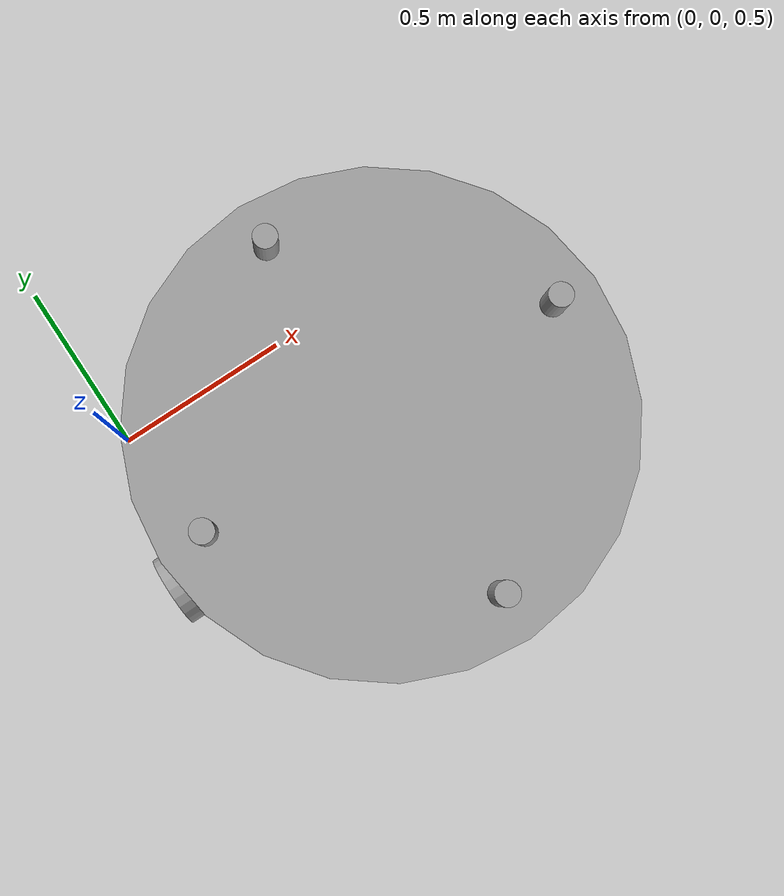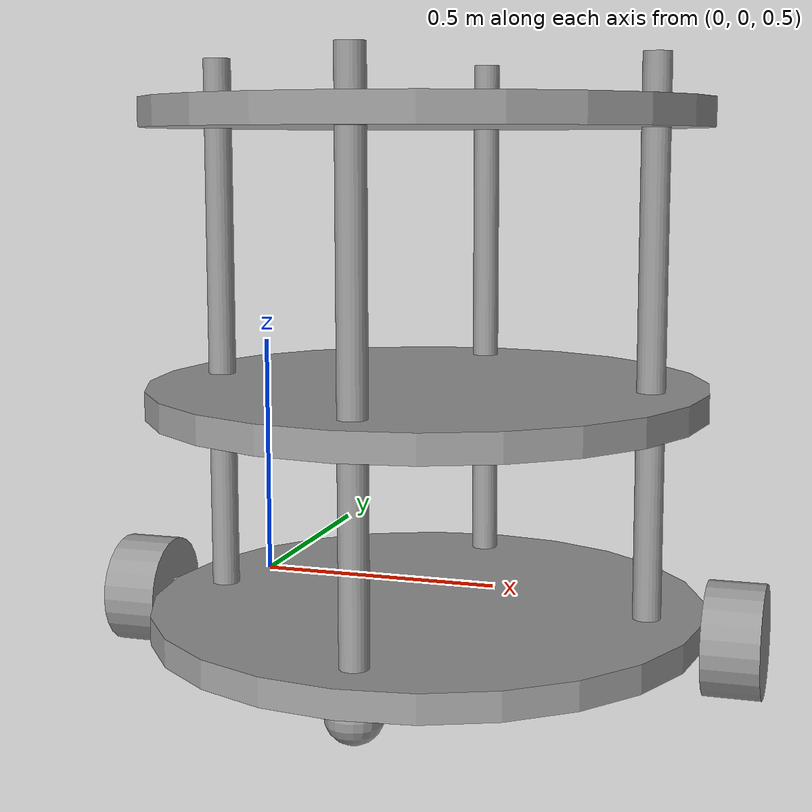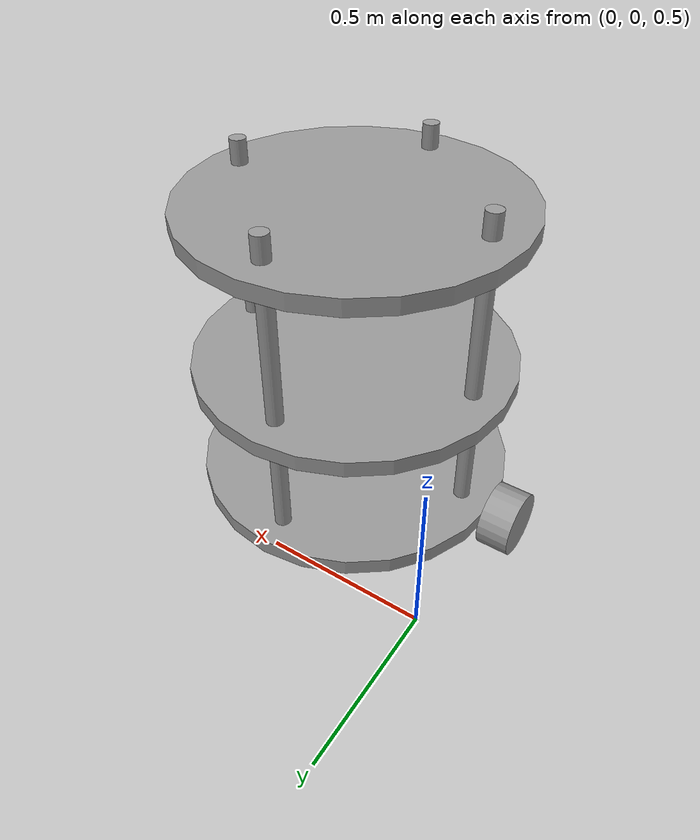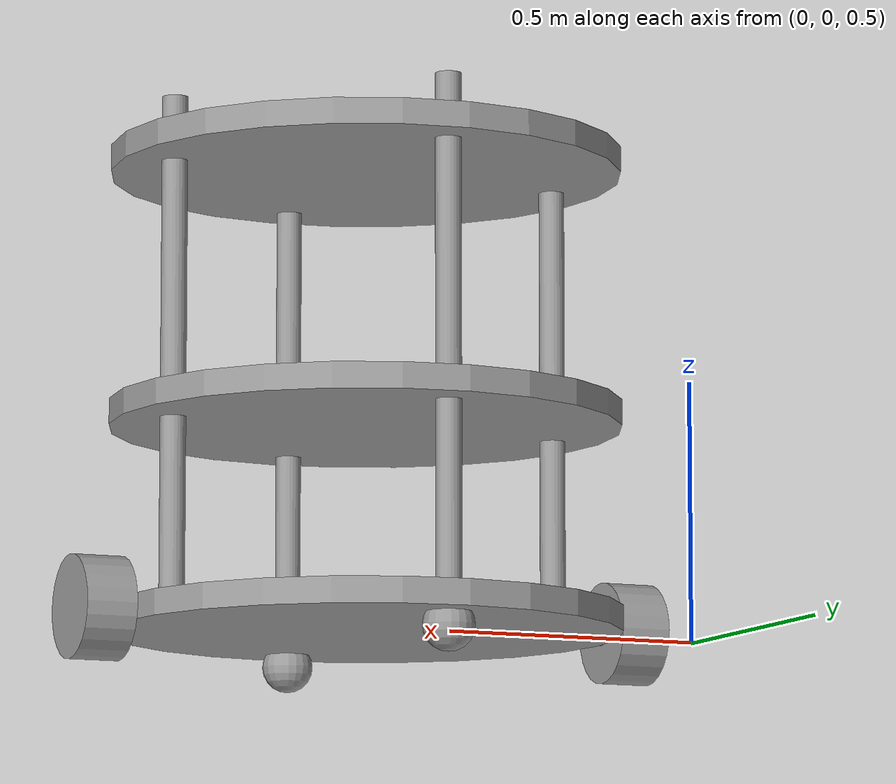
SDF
<?xml version='1.0'?>
<sdf version='1.6'>
  <model name='chefbot'>
    <link name='link_0'>
      <pose frame=''>0.489711 -0.428162 0.466588 0 -0 0</pose>
      <inertial>
        <mass>1</mass>
        <inertia>
          <ixx>0.145833</ixx>
          <ixy>0</ixy>
          <ixz>0</ixz>
          <iyy>0.145833</iyy>
          <iyz>0</iyz>
          <izz>0.125</izz>
        </inertia>
        <pose frame=''>0 0 0 0 -0 0</pose>
      </inertial>
      <gravity>1</gravity>
      <self_collide>0</self_collide>
      <kinematic>0</kinematic>
      <visual name='visual'>
        <pose frame=''>0 0 0.1 0 -0 0</pose>
        <geometry>
          <cylinder>
            <radius>0.5</radius>
            <length>0.05</length>
          </cylinder>
        </geometry>
        <material>
          <lighting>1</lighting>
          <script>
            <uri>file://media/materials/scripts/gazebo.material</uri>
            <name>Gazebo/Grey</name>
          </script>
          <ambient>0.3 0.3 0.3 1</ambient>
          <diffuse>0.7 0.7 0.7 1</diffuse>
          <specular>0.01 0.01 0.01 1</specular>
          <emissive>0 0 0 1</emissive>
          <shader type='vertex'>
            <normal_map>__default__</normal_map>
          </shader>
        </material>
        <cast_shadows>1</cast_shadows>
        <transparency>0</transparency>
      </visual>
      <collision name='collision'>
        <laser_retro>0</laser_retro>
        <max_contacts>10</max_contacts>
        <pose frame=''>0 0 0.1 0 -0 0</pose>
        <geometry>
          <cylinder>
            <radius>0.5</radius>
            <length>0.05</length>
          </cylinder>
        </geometry>
        <surface>
          <friction>
            <ode>
              <mu>1</mu>
              <mu2>1</mu2>
              <fdir1>0 0 0</fdir1>
              <slip1>0</slip1>
              <slip2>0</slip2>
            </ode>
            <torsional>
              <coefficient>1</coefficient>
              <patch_radius>0</patch_radius>
              <surface_radius>0</surface_radius>
              <use_patch_radius>1</use_patch_radius>
              <ode>
                <slip>0</slip>
              </ode>
            </torsional>
          </friction>
          <bounce>
            <restitution_coefficient>0</restitution_coefficient>
            <threshold>1e+06</threshold>
          </bounce>
          <contact>
            <collide_without_contact>0</collide_without_contact>
            <collide_without_contact_bitmask>1</collide_without_contact_bitmask>
            <collide_bitmask>1</collide_bitmask>
            <ode>
              <soft_cfm>0</soft_cfm>
              <soft_erp>0.2</soft_erp>
              <kp>1e+13</kp>
              <kd>1</kd>
              <max_vel>0.01</max_vel>
              <min_depth>0</min_depth>
            </ode>
            <bullet>
              <split_impulse>1</split_impulse>
              <split_impulse_penetration_threshold>-0.01</split_impulse_penetration_threshold>
              <soft_cfm>0</soft_cfm>
              <soft_erp>0.2</soft_erp>
              <kp>1e+13</kp>
              <kd>1</kd>
            </bullet>
          </contact>
        </surface>
      </collision>
    </link>
    <link name='link_1'>
      <pose frame=''>0.489711 -0.428162 0.466588 0 -0 0</pose>
      <inertial>
        <mass>1</mass>
        <inertia>
          <ixx>0.145833</ixx>
          <ixy>0</ixy>
          <ixz>0</ixz>
          <iyy>0.145833</iyy>
          <iyz>0</iyz>
          <izz>0.125</izz>
        </inertia>
        <pose frame=''>0 0 0 0 -0 0</pose>
      </inertial>
      <gravity>1</gravity>
      <self_collide>0</self_collide>
      <kinematic>0</kinematic>
      <visual name='visual'>
        <pose frame=''>0 0 0.5 0 -0 0</pose>
        <geometry>
          <cylinder>
            <radius>0.5</radius>
            <length>0.05</length>
          </cylinder>
        </geometry>
        <material>
          <lighting>1</lighting>
          <script>
            <uri>file://media/materials/scripts/gazebo.material</uri>
            <name>Gazebo/Grey</name>
          </script>
          <ambient>0.3 0.3 0.3 1</ambient>
          <diffuse>0.7 0.7 0.7 1</diffuse>
          <specular>0.01 0.01 0.01 1</specular>
          <emissive>0 0 0 1</emissive>
          <shader type='vertex'>
            <normal_map>__default__</normal_map>
          </shader>
        </material>
        <cast_shadows>1</cast_shadows>
        <transparency>0</transparency>
      </visual>
      <collision name='collision'>
        <laser_retro>0</laser_retro>
        <max_contacts>10</max_contacts>
        <pose frame=''>0 0 0.5 0 -0 0</pose>
        <geometry>
          <cylinder>
            <radius>0.5</radius>
            <length>0.05</length>
          </cylinder>
        </geometry>
        <surface>
          <friction>
            <ode>
              <mu>1</mu>
              <mu2>1</mu2>
              <fdir1>0 0 0</fdir1>
              <slip1>0</slip1>
              <slip2>0</slip2>
            </ode>
            <torsional>
              <coefficient>1</coefficient>
              <patch_radius>0</patch_radius>
              <surface_radius>0</surface_radius>
              <use_patch_radius>1</use_patch_radius>
              <ode>
                <slip>0</slip>
              </ode>
            </torsional>
          </friction>
          <bounce>
            <restitution_coefficient>0</restitution_coefficient>
            <threshold>1e+06</threshold>
          </bounce>
          <contact>
            <collide_without_contact>0</collide_without_contact>
            <collide_without_contact_bitmask>1</collide_without_contact_bitmask>
            <collide_bitmask>1</collide_bitmask>
            <ode>
              <soft_cfm>0</soft_cfm>
              <soft_erp>0.2</soft_erp>
              <kp>1e+13</kp>
              <kd>1</kd>
              <max_vel>0.01</max_vel>
              <min_depth>0</min_depth>
            </ode>
            <bullet>
              <split_impulse>1</split_impulse>
              <split_impulse_penetration_threshold>-0.01</split_impulse_penetration_threshold>
              <soft_cfm>0</soft_cfm>
              <soft_erp>0.2</soft_erp>
              <kp>1e+13</kp>
              <kd>1</kd>
            </bullet>
          </contact>
        </surface>
      </collision>
    </link>
    <link name='link_2'>
      <pose frame=''>0.489711 -0.428162 0.466588 0 -0 0</pose>
      <inertial>
        <mass>1</mass>
        <inertia>
          <ixx>0.145833</ixx>
          <ixy>0</ixy>
          <ixz>0</ixz>
          <iyy>0.145833</iyy>
          <iyz>0</iyz>
          <izz>0.125</izz>
        </inertia>
        <pose frame=''>0 0 0 0 -0 0</pose>
      </inertial>
      <gravity>1</gravity>
      <self_collide>0</self_collide>
      <kinematic>0</kinematic>
      <visual name='visual'>
        <pose frame=''>0 0 1 0 -0 0</pose>
        <geometry>
          <cylinder>
            <radius>0.5</radius>
            <length>0.05</length>
          </cylinder>
        </geometry>
        <material>
          <lighting>1</lighting>
          <script>
            <uri>file://media/materials/scripts/gazebo.material</uri>
            <name>Gazebo/Grey</name>
          </script>
          <ambient>0.3 0.3 0.3 1</ambient>
          <diffuse>0.7 0.7 0.7 1</diffuse>
          <specular>0.01 0.01 0.01 1</specular>
          <emissive>0 0 0 1</emissive>
          <shader type='vertex'>
            <normal_map>__default__</normal_map>
          </shader>
        </material>
        <cast_shadows>1</cast_shadows>
        <transparency>0</transparency>
      </visual>
      <collision name='collision'>
        <laser_retro>0</laser_retro>
        <max_contacts>10</max_contacts>
        <pose frame=''>0 0 1 0 -0 0</pose>
        <geometry>
          <cylinder>
            <radius>0.5</radius>
            <length>0.05</length>
          </cylinder>
        </geometry>
        <surface>
          <friction>
            <ode>
              <mu>1</mu>
              <mu2>1</mu2>
              <fdir1>0 0 0</fdir1>
              <slip1>0</slip1>
              <slip2>0</slip2>
            </ode>
            <torsional>
              <coefficient>1</coefficient>
              <patch_radius>0</patch_radius>
              <surface_radius>0</surface_radius>
              <use_patch_radius>1</use_patch_radius>
              <ode>
                <slip>0</slip>
              </ode>
            </torsional>
          </friction>
          <bounce>
            <restitution_coefficient>0</restitution_coefficient>
            <threshold>1e+06</threshold>
          </bounce>
          <contact>
            <collide_without_contact>0</collide_without_contact>
            <collide_without_contact_bitmask>1</collide_without_contact_bitmask>
            <collide_bitmask>1</collide_bitmask>
            <ode>
              <soft_cfm>0</soft_cfm>
              <soft_erp>0.2</soft_erp>
              <kp>1e+13</kp>
              <kd>1</kd>
              <max_vel>0.01</max_vel>
              <min_depth>0</min_depth>
            </ode>
            <bullet>
              <split_impulse>1</split_impulse>
              <split_impulse_penetration_threshold>-0.01</split_impulse_penetration_threshold>
              <soft_cfm>0</soft_cfm>
              <soft_erp>0.2</soft_erp>
              <kp>1e+13</kp>
              <kd>1</kd>
            </bullet>
          </contact>
        </surface>
      </collision>
    </link>
    <link name='link_4'>
      <pose frame=''>0.889711 -0.428162 0.966588 0 -0 0</pose>
      <inertial>
        <mass>1</mass>
        <inertia>
          <ixx>0.145833</ixx>
          <ixy>0</ixy>
          <ixz>0</ixz>
          <iyy>0.145833</iyy>
          <iyz>0</iyz>
          <izz>0.125</izz>
        </inertia>
        <pose frame=''>0 0 0 0 -0 0</pose>
      </inertial>
      <gravity>1</gravity>
      <self_collide>0</self_collide>
      <kinematic>0</kinematic>
      <visual name='visual'>
        <pose frame=''>0 0 0.1 0 -0 0</pose>
        <geometry>
          <cylinder>
            <radius>0.025</radius>
            <length>1</length>
          </cylinder>
        </geometry>
        <material>
          <lighting>1</lighting>
          <script>
            <uri>file://media/materials/scripts/gazebo.material</uri>
            <name>Gazebo/Grey</name>
          </script>
          <ambient>0.3 0.3 0.3 1</ambient>
          <diffuse>0.7 0.7 0.7 1</diffuse>
          <specular>0.01 0.01 0.01 1</specular>
          <emissive>0 0 0 1</emissive>
          <shader type='vertex'>
            <normal_map>__default__</normal_map>
          </shader>
        </material>
        <cast_shadows>1</cast_shadows>
        <transparency>0</transparency>
      </visual>
      <collision name='collision'>
        <laser_retro>0</laser_retro>
        <max_contacts>10</max_contacts>
        <pose frame=''>0 0 0.1 0 -0 0</pose>
        <geometry>
          <cylinder>
            <radius>0.025</radius>
            <length>1</length>
          </cylinder>
        </geometry>
        <surface>
          <friction>
            <ode>
              <mu>1</mu>
              <mu2>1</mu2>
              <fdir1>0 0 0</fdir1>
              <slip1>0</slip1>
              <slip2>0</slip2>
            </ode>
            <torsional>
              <coefficient>1</coefficient>
              <patch_radius>0</patch_radius>
              <surface_radius>0</surface_radius>
              <use_patch_radius>1</use_patch_radius>
              <ode>
                <slip>0</slip>
              </ode>
            </torsional>
          </friction>
          <bounce>
            <restitution_coefficient>0</restitution_coefficient>
            <threshold>1e+06</threshold>
          </bounce>
          <contact>
            <collide_without_contact>0</collide_without_contact>
            <collide_without_contact_bitmask>1</collide_without_contact_bitmask>
            <collide_bitmask>1</collide_bitmask>
            <ode>
              <soft_cfm>0</soft_cfm>
              <soft_erp>0.2</soft_erp>
              <kp>1e+13</kp>
              <kd>1</kd>
              <max_vel>0.01</max_vel>
              <min_depth>0</min_depth>
            </ode>
            <bullet>
              <split_impulse>1</split_impulse>
              <split_impulse_penetration_threshold>-0.01</split_impulse_penetration_threshold>
              <soft_cfm>0</soft_cfm>
              <soft_erp>0.2</soft_erp>
              <kp>1e+13</kp>
              <kd>1</kd>
            </bullet>
          </contact>
        </surface>
      </collision>
    </link>
    <link name='link_4_clone'>
      <pose frame=''>0.089711 -0.428162 0.966588 0 -0 0</pose>
      <inertial>
        <mass>1</mass>
        <inertia>
          <ixx>0.145833</ixx>
          <ixy>0</ixy>
          <ixz>0</ixz>
          <iyy>0.145833</iyy>
          <iyz>0</iyz>
          <izz>0.125</izz>
        </inertia>
        <pose frame=''>0 0 0 0 -0 0</pose>
      </inertial>
      <self_collide>0</self_collide>
      <kinematic>0</kinematic>
      <visual name='visual'>
        <pose frame=''>0 0 0.1 0 -0 0</pose>
        <geometry>
          <cylinder>
            <radius>0.025</radius>
            <length>1</length>
          </cylinder>
        </geometry>
        <material>
          <lighting>1</lighting>
          <script>
            <uri>file://media/materials/scripts/gazebo.material</uri>
            <name>Gazebo/Grey</name>
          </script>
          <ambient>0.3 0.3 0.3 1</ambient>
          <diffuse>0.7 0.7 0.7 1</diffuse>
          <specular>0.01 0.01 0.01 1</specular>
          <emissive>0 0 0 1</emissive>
          <shader type='vertex'>
            <normal_map>__default__</normal_map>
          </shader>
        </material>
        <cast_shadows>1</cast_shadows>
        <transparency>0</transparency>
      </visual>
      <collision name='collision'>
        <laser_retro>0</laser_retro>
        <max_contacts>10</max_contacts>
        <pose frame=''>0 0 0.1 0 -0 0</pose>
        <geometry>
          <cylinder>
            <radius>0.025</radius>
            <length>1</length>
          </cylinder>
        </geometry>
        <surface>
          <friction>
            <ode>
              <mu>1</mu>
              <mu2>1</mu2>
              <fdir1>0 0 0</fdir1>
              <slip1>0</slip1>
              <slip2>0</slip2>
            </ode>
            <torsional>
              <coefficient>1</coefficient>
              <patch_radius>0</patch_radius>
              <surface_radius>0</surface_radius>
              <use_patch_radius>1</use_patch_radius>
              <ode>
                <slip>0</slip>
              </ode>
            </torsional>
          </friction>
          <bounce>
            <restitution_coefficient>0</restitution_coefficient>
            <threshold>1e+06</threshold>
          </bounce>
          <contact>
            <collide_without_contact>0</collide_without_contact>
            <collide_without_contact_bitmask>1</collide_without_contact_bitmask>
            <collide_bitmask>1</collide_bitmask>
            <ode>
              <soft_cfm>0</soft_cfm>
              <soft_erp>0.2</soft_erp>
              <kp>1e+13</kp>
              <kd>1</kd>
              <max_vel>0.01</max_vel>
              <min_depth>0</min_depth>
            </ode>
            <bullet>
              <split_impulse>1</split_impulse>
              <split_impulse_penetration_threshold>-0.01</split_impulse_penetration_threshold>
              <soft_cfm>0</soft_cfm>
              <soft_erp>0.2</soft_erp>
              <kp>1e+13</kp>
              <kd>1</kd>
            </bullet>
          </contact>
        </surface>
      </collision>
    </link>
    <link name='link_4_clone_clone'>
      <pose frame=''>0.489711 -0.028162 0.966588 0 -0 0</pose>
      <inertial>
        <mass>1</mass>
        <inertia>
          <ixx>0.145833</ixx>
          <ixy>0</ixy>
          <ixz>0</ixz>
          <iyy>0.145833</iyy>
          <iyz>0</iyz>
          <izz>0.125</izz>
        </inertia>
        <pose frame=''>0 0 0 0 -0 0</pose>
      </inertial>
      <self_collide>0</self_collide>
      <kinematic>0</kinematic>
      <visual name='visual'>
        <pose frame=''>0 0 0.1 0 -0 0</pose>
        <geometry>
          <cylinder>
            <radius>0.025</radius>
            <length>1</length>
          </cylinder>
        </geometry>
        <material>
          <lighting>1</lighting>
          <script>
            <uri>file://media/materials/scripts/gazebo.material</uri>
            <name>Gazebo/Grey</name>
          </script>
          <ambient>0.3 0.3 0.3 1</ambient>
          <diffuse>0.7 0.7 0.7 1</diffuse>
          <specular>0.01 0.01 0.01 1</specular>
          <emissive>0 0 0 1</emissive>
          <shader type='vertex'>
            <normal_map>__default__</normal_map>
          </shader>
        </material>
        <cast_shadows>1</cast_shadows>
        <transparency>0</transparency>
      </visual>
      <collision name='collision'>
        <laser_retro>0</laser_retro>
        <max_contacts>10</max_contacts>
        <pose frame=''>0 0 0.1 0 -0 0</pose>
        <geometry>
          <cylinder>
            <radius>0.025</radius>
            <length>1</length>
          </cylinder>
        </geometry>
        <surface>
          <friction>
            <ode>
              <mu>1</mu>
              <mu2>1</mu2>
              <fdir1>0 0 0</fdir1>
              <slip1>0</slip1>
              <slip2>0</slip2>
            </ode>
            <torsional>
              <coefficient>1</coefficient>
              <patch_radius>0</patch_radius>
              <surface_radius>0</surface_radius>
              <use_patch_radius>1</use_patch_radius>
              <ode>
                <slip>0</slip>
              </ode>
            </torsional>
          </friction>
          <bounce>
            <restitution_coefficient>0</restitution_coefficient>
            <threshold>1e+06</threshold>
          </bounce>
          <contact>
            <collide_without_contact>0</collide_without_contact>
            <collide_without_contact_bitmask>1</collide_without_contact_bitmask>
            <collide_bitmask>1</collide_bitmask>
            <ode>
              <soft_cfm>0</soft_cfm>
              <soft_erp>0.2</soft_erp>
              <kp>1e+13</kp>
              <kd>1</kd>
              <max_vel>0.01</max_vel>
              <min_depth>0</min_depth>
            </ode>
            <bullet>
              <split_impulse>1</split_impulse>
              <split_impulse_penetration_threshold>-0.01</split_impulse_penetration_threshold>
              <soft_cfm>0</soft_cfm>
              <soft_erp>0.2</soft_erp>
              <kp>1e+13</kp>
              <kd>1</kd>
            </bullet>
          </contact>
        </surface>
      </collision>
    </link>
    <link name='link_4_clone_clone_clone'>
      <pose frame=''>0.489711 -0.828162 0.966588 0 -0 0</pose>
      <inertial>
        <mass>1</mass>
        <inertia>
          <ixx>0.145833</ixx>
          <ixy>0</ixy>
          <ixz>0</ixz>
          <iyy>0.145833</iyy>
          <iyz>0</iyz>
          <izz>0.125</izz>
        </inertia>
        <pose frame=''>0 0 0 0 -0 0</pose>
      </inertial>
      <self_collide>0</self_collide>
      <kinematic>0</kinematic>
      <visual name='visual'>
        <pose frame=''>0 0 0.1 0 -0 0</pose>
        <geometry>
          <cylinder>
            <radius>0.025</radius>
            <length>1</length>
          </cylinder>
        </geometry>
        <material>
          <lighting>1</lighting>
          <script>
            <uri>file://media/materials/scripts/gazebo.material</uri>
            <name>Gazebo/Grey</name>
          </script>
          <ambient>0.3 0.3 0.3 1</ambient>
          <diffuse>0.7 0.7 0.7 1</diffuse>
          <specular>0.01 0.01 0.01 1</specular>
          <emissive>0 0 0 1</emissive>
          <shader type='vertex'>
            <normal_map>__default__</normal_map>
          </shader>
        </material>
        <cast_shadows>1</cast_shadows>
        <transparency>0</transparency>
      </visual>
      <collision name='collision'>
        <laser_retro>0</laser_retro>
        <max_contacts>10</max_contacts>
        <pose frame=''>0 0 0.1 0 -0 0</pose>
        <geometry>
          <cylinder>
            <radius>0.025</radius>
            <length>1</length>
          </cylinder>
        </geometry>
        <surface>
          <friction>
            <ode>
              <mu>1</mu>
              <mu2>1</mu2>
              <fdir1>0 0 0</fdir1>
              <slip1>0</slip1>
              <slip2>0</slip2>
            </ode>
            <torsional>
              <coefficient>1</coefficient>
              <patch_radius>0</patch_radius>
              <surface_radius>0</surface_radius>
              <use_patch_radius>1</use_patch_radius>
              <ode>
                <slip>0</slip>
              </ode>
            </torsional>
          </friction>
          <bounce>
            <restitution_coefficient>0</restitution_coefficient>
            <threshold>1e+06</threshold>
          </bounce>
          <contact>
            <collide_without_contact>0</collide_without_contact>
            <collide_without_contact_bitmask>1</collide_without_contact_bitmask>
            <collide_bitmask>1</collide_bitmask>
            <ode>
              <soft_cfm>0</soft_cfm>
              <soft_erp>0.2</soft_erp>
              <kp>1e+13</kp>
              <kd>1</kd>
              <max_vel>0.01</max_vel>
              <min_depth>0</min_depth>
            </ode>
            <bullet>
              <split_impulse>1</split_impulse>
              <split_impulse_penetration_threshold>-0.01</split_impulse_penetration_threshold>
              <soft_cfm>0</soft_cfm>
              <soft_erp>0.2</soft_erp>
              <kp>1e+13</kp>
              <kd>1</kd>
            </bullet>
          </contact>
        </surface>
      </collision>
    </link>
    <link name='link_5'>
      <pose frame=''>0.989711 -0.428162 0.566588 1.5707 0 1.5707</pose>
      <inertial>
        <mass>1</mass>
        <inertia>
          <ixx>0.145833</ixx>
          <ixy>0</ixy>
          <ixz>0</ixz>
          <iyy>0.145833</iyy>
          <iyz>0</iyz>
          <izz>0.125</izz>
        </inertia>
        <pose frame=''>0 0 0 0 -0 0</pose>
      </inertial>
      <gravity>1</gravity>
      <self_collide>0</self_collide>
      <kinematic>0</kinematic>
      <visual name='visual'>
        <pose frame=''>0 0 0 0 -0 0</pose>
        <geometry>
          <cylinder>
            <radius>0.025</radius>
            <length>0.025</length>
          </cylinder>
        </geometry>
        <material>
          <lighting>1</lighting>
          <script>
            <uri>file://media/materials/scripts/gazebo.material</uri>
            <name>Gazebo/Grey</name>
          </script>
          <ambient>0.3 0.3 0.3 1</ambient>
          <diffuse>0.7 0.7 0.7 1</diffuse>
          <specular>0.01 0.01 0.01 1</specular>
          <emissive>0 0 0 1</emissive>
          <shader type='vertex'>
            <normal_map>__default__</normal_map>
          </shader>
        </material>
        <cast_shadows>1</cast_shadows>
        <transparency>0</transparency>
      </visual>
      <collision name='collision'>
        <laser_retro>0</laser_retro>
        <max_contacts>10</max_contacts>
        <pose frame=''>0 0 0 0 -0 0</pose>
        <geometry>
          <cylinder>
            <radius>0.025</radius>
            <length>0.025</length>
          </cylinder>
        </geometry>
        <surface>
          <friction>
            <ode>
              <mu>1</mu>
              <mu2>1</mu2>
              <fdir1>0 0 0</fdir1>
              <slip1>0</slip1>
              <slip2>0</slip2>
            </ode>
            <torsional>
              <coefficient>1</coefficient>
              <patch_radius>0</patch_radius>
              <surface_radius>0</surface_radius>
              <use_patch_radius>1</use_patch_radius>
              <ode>
                <slip>0</slip>
              </ode>
            </torsional>
          </friction>
          <bounce>
            <restitution_coefficient>0</restitution_coefficient>
            <threshold>1e+06</threshold>
          </bounce>
          <contact>
            <collide_without_contact>0</collide_without_contact>
            <collide_without_contact_bitmask>1</collide_without_contact_bitmask>
            <collide_bitmask>1</collide_bitmask>
            <ode>
              <soft_cfm>0</soft_cfm>
              <soft_erp>0.2</soft_erp>
              <kp>1e+13</kp>
              <kd>1</kd>
              <max_vel>0.01</max_vel>
              <min_depth>0</min_depth>
            </ode>
            <bullet>
              <split_impulse>1</split_impulse>
              <split_impulse_penetration_threshold>-0.01</split_impulse_penetration_threshold>
              <soft_cfm>0</soft_cfm>
              <soft_erp>0.2</soft_erp>
              <kp>1e+13</kp>
              <kd>1</kd>
            </bullet>
          </contact>
        </surface>
      </collision>
    </link>
    <link name='link_5_clone'>
      <pose frame=''>-0.010289 -0.428162 0.566588 1.5707 0 1.5707</pose>
      <inertial>
        <mass>1</mass>
        <inertia>
          <ixx>0.145833</ixx>
          <ixy>0</ixy>
          <ixz>0</ixz>
          <iyy>0.145833</iyy>
          <iyz>0</iyz>
          <izz>0.125</izz>
        </inertia>
        <pose frame=''>0 0 0 0 -0 0</pose>
      </inertial>
      <self_collide>0</self_collide>
      <kinematic>0</kinematic>
      <visual name='visual'>
        <pose frame=''>0 0 0 0 -0 0</pose>
        <geometry>
          <cylinder>
            <radius>0.025</radius>
            <length>0.025</length>
          </cylinder>
        </geometry>
        <material>
          <lighting>1</lighting>
          <script>
            <uri>file://media/materials/scripts/gazebo.material</uri>
            <name>Gazebo/Grey</name>
          </script>
          <ambient>0.3 0.3 0.3 1</ambient>
          <diffuse>0.7 0.7 0.7 1</diffuse>
          <specular>0.01 0.01 0.01 1</specular>
          <emissive>0 0 0 1</emissive>
          <shader type='vertex'>
            <normal_map>__default__</normal_map>
          </shader>
        </material>
        <cast_shadows>1</cast_shadows>
        <transparency>0</transparency>
      </visual>
      <collision name='collision'>
        <laser_retro>0</laser_retro>
        <max_contacts>10</max_contacts>
        <pose frame=''>0 0 0 0 -0 0</pose>
        <geometry>
          <cylinder>
            <radius>0.025</radius>
            <length>0.025</length>
          </cylinder>
        </geometry>
        <surface>
          <friction>
            <ode>
              <mu>1</mu>
              <mu2>1</mu2>
              <fdir1>0 0 0</fdir1>
              <slip1>0</slip1>
              <slip2>0</slip2>
            </ode>
            <torsional>
              <coefficient>1</coefficient>
              <patch_radius>0</patch_radius>
              <surface_radius>0</surface_radius>
              <use_patch_radius>1</use_patch_radius>
              <ode>
                <slip>0</slip>
              </ode>
            </torsional>
          </friction>
          <bounce>
            <restitution_coefficient>0</restitution_coefficient>
            <threshold>1e+06</threshold>
          </bounce>
          <contact>
            <collide_without_contact>0</collide_without_contact>
            <collide_without_contact_bitmask>1</collide_without_contact_bitmask>
            <collide_bitmask>1</collide_bitmask>
            <ode>
              <soft_cfm>0</soft_cfm>
              <soft_erp>0.2</soft_erp>
              <kp>1e+13</kp>
              <kd>1</kd>
              <max_vel>0.01</max_vel>
              <min_depth>0</min_depth>
            </ode>
            <bullet>
              <split_impulse>1</split_impulse>
              <split_impulse_penetration_threshold>-0.01</split_impulse_penetration_threshold>
              <soft_cfm>0</soft_cfm>
              <soft_erp>0.2</soft_erp>
              <kp>1e+13</kp>
              <kd>1</kd>
            </bullet>
          </contact>
        </surface>
      </collision>
    </link>
    <link name='link_6'>
      <pose frame=''>1.04471 -0.428167 0.566594 1.5707 0 1.5707</pose>
      <inertial>
        <mass>1</mass>
        <inertia>
          <ixx>0.145833</ixx>
          <ixy>0</ixy>
          <ixz>0</ixz>
          <iyy>0.145833</iyy>
          <iyz>0</iyz>
          <izz>0.125</izz>
        </inertia>
        <pose frame=''>0 0 0 0 -0 0</pose>
      </inertial>
      <gravity>1</gravity>
      <self_collide>0</self_collide>
      <kinematic>0</kinematic>
      <visual name='visual'>
        <pose frame=''>0 0 0 0 -0 0</pose>
        <geometry>
          <cylinder>
            <radius>0.1</radius>
            <length>0.1</length>
          </cylinder>
        </geometry>
        <material>
          <lighting>1</lighting>
          <script>
            <uri>file://media/materials/scripts/gazebo.material</uri>
            <name>Gazebo/Grey</name>
          </script>
          <ambient>0.3 0.3 0.3 1</ambient>
          <diffuse>0.7 0.7 0.7 1</diffuse>
          <specular>0.01 0.01 0.01 1</specular>
          <emissive>0 0 0 1</emissive>
          <shader type='vertex'>
            <normal_map>__default__</normal_map>
          </shader>
        </material>
        <cast_shadows>1</cast_shadows>
        <transparency>0</transparency>
      </visual>
      <collision name='collision'>
        <laser_retro>0</laser_retro>
        <max_contacts>10</max_contacts>
        <pose frame=''>0 0 0 0 -0 0</pose>
        <geometry>
          <cylinder>
            <radius>0.1</radius>
            <length>0.1</length>
          </cylinder>
        </geometry>
        <surface>
          <friction>
            <ode>
              <mu>1</mu>
              <mu2>1</mu2>
              <fdir1>0 0 0</fdir1>
              <slip1>0</slip1>
              <slip2>0</slip2>
            </ode>
            <torsional>
              <coefficient>1</coefficient>
              <patch_radius>0</patch_radius>
              <surface_radius>0</surface_radius>
              <use_patch_radius>1</use_patch_radius>
              <ode>
                <slip>0</slip>
              </ode>
            </torsional>
          </friction>
          <bounce>
            <restitution_coefficient>0</restitution_coefficient>
            <threshold>1e+06</threshold>
          </bounce>
          <contact>
            <collide_without_contact>0</collide_without_contact>
            <collide_without_contact_bitmask>1</collide_without_contact_bitmask>
            <collide_bitmask>1</collide_bitmask>
            <ode>
              <soft_cfm>0</soft_cfm>
              <soft_erp>0.2</soft_erp>
              <kp>1e+13</kp>
              <kd>1</kd>
              <max_vel>0.01</max_vel>
              <min_depth>0</min_depth>
            </ode>
            <bullet>
              <split_impulse>1</split_impulse>
              <split_impulse_penetration_threshold>-0.01</split_impulse_penetration_threshold>
              <soft_cfm>0</soft_cfm>
              <soft_erp>0.2</soft_erp>
              <kp>1e+13</kp>
              <kd>1</kd>
            </bullet>
          </contact>
        </surface>
      </collision>
    </link>
    <link name='link_6_clone'>
      <pose frame=''>-0.065289 -0.428157 0.566583 1.5707 0 1.5707</pose>
      <inertial>
        <mass>1</mass>
        <inertia>
          <ixx>0.145833</ixx>
          <ixy>0</ixy>
          <ixz>0</ixz>
          <iyy>0.145833</iyy>
          <iyz>0</iyz>
          <izz>0.125</izz>
        </inertia>
        <pose frame=''>0 0 0 0 -0 0</pose>
      </inertial>
      <self_collide>0</self_collide>
      <kinematic>0</kinematic>
      <visual name='visual'>
        <pose frame=''>0 0 0 0 -0 0</pose>
        <geometry>
          <cylinder>
            <radius>0.1</radius>
            <length>0.1</length>
          </cylinder>
        </geometry>
        <material>
          <lighting>1</lighting>
          <script>
            <uri>file://media/materials/scripts/gazebo.material</uri>
            <name>Gazebo/Grey</name>
          </script>
          <ambient>0.3 0.3 0.3 1</ambient>
          <diffuse>0.7 0.7 0.7 1</diffuse>
          <specular>0.01 0.01 0.01 1</specular>
          <emissive>0 0 0 1</emissive>
          <shader type='vertex'>
            <normal_map>__default__</normal_map>
          </shader>
        </material>
        <cast_shadows>1</cast_shadows>
        <transparency>0</transparency>
      </visual>
      <collision name='collision'>
        <laser_retro>0</laser_retro>
        <max_contacts>10</max_contacts>
        <pose frame=''>0 0 0 0 -0 0</pose>
        <geometry>
          <cylinder>
            <radius>0.1</radius>
            <length>0.1</length>
          </cylinder>
        </geometry>
        <surface>
          <friction>
            <ode>
              <mu>1</mu>
              <mu2>1</mu2>
              <fdir1>0 0 0</fdir1>
              <slip1>0</slip1>
              <slip2>0</slip2>
            </ode>
            <torsional>
              <coefficient>1</coefficient>
              <patch_radius>0</patch_radius>
              <surface_radius>0</surface_radius>
              <use_patch_radius>1</use_patch_radius>
              <ode>
                <slip>0</slip>
              </ode>
            </torsional>
          </friction>
          <bounce>
            <restitution_coefficient>0</restitution_coefficient>
            <threshold>1e+06</threshold>
          </bounce>
          <contact>
            <collide_without_contact>0</collide_without_contact>
            <collide_without_contact_bitmask>1</collide_without_contact_bitmask>
            <collide_bitmask>1</collide_bitmask>
            <ode>
              <soft_cfm>0</soft_cfm>
              <soft_erp>0.2</soft_erp>
              <kp>1e+13</kp>
              <kd>1</kd>
              <max_vel>0.01</max_vel>
              <min_depth>0</min_depth>
            </ode>
            <bullet>
              <split_impulse>1</split_impulse>
              <split_impulse_penetration_threshold>-0.01</split_impulse_penetration_threshold>
              <soft_cfm>0</soft_cfm>
              <soft_erp>0.2</soft_erp>
              <kp>1e+13</kp>
              <kd>1</kd>
            </bullet>
          </contact>
        </surface>
      </collision>
    </link>
    <link name='link_7'>
      <pose frame=''>0.489711 -0.028162 0.516588 0 -0 0</pose>
      <inertial>
        <mass>1</mass>
        <inertia>
          <ixx>0.1</ixx>
          <ixy>0</ixy>
          <ixz>0</ixz>
          <iyy>0.1</iyy>
          <iyz>0</iyz>
          <izz>0.1</izz>
        </inertia>
        <pose frame=''>0 0 0 0 -0 0</pose>
      </inertial>
      <gravity>1</gravity>
      <self_collide>0</self_collide>
      <kinematic>0</kinematic>
      <visual name='visual'>
        <pose frame=''>0 0 0 0 -0 0</pose>
        <geometry>
          <sphere>
            <radius>0.05</radius>
          </sphere>
        </geometry>
        <material>
          <lighting>1</lighting>
          <script>
            <uri>file://media/materials/scripts/gazebo.material</uri>
            <name>Gazebo/Grey</name>
          </script>
          <ambient>0.3 0.3 0.3 1</ambient>
          <diffuse>0.7 0.7 0.7 1</diffuse>
          <specular>0.01 0.01 0.01 1</specular>
          <emissive>0 0 0 1</emissive>
          <shader type='vertex'>
            <normal_map>__default__</normal_map>
          </shader>
        </material>
        <cast_shadows>1</cast_shadows>
        <transparency>0</transparency>
      </visual>
      <collision name='collision'>
        <laser_retro>0</laser_retro>
        <max_contacts>10</max_contacts>
        <pose frame=''>0 0 0 0 -0 0</pose>
        <geometry>
          <sphere>
            <radius>0.05</radius>
          </sphere>
        </geometry>
        <surface>
          <friction>
            <ode>
              <mu>1</mu>
              <mu2>1</mu2>
              <fdir1>0 0 0</fdir1>
              <slip1>0</slip1>
              <slip2>0</slip2>
            </ode>
            <torsional>
              <coefficient>1</coefficient>
              <patch_radius>0</patch_radius>
              <surface_radius>0</surface_radius>
              <use_patch_radius>1</use_patch_radius>
              <ode>
                <slip>0</slip>
              </ode>
            </torsional>
          </friction>
          <bounce>
            <restitution_coefficient>0</restitution_coefficient>
            <threshold>1e+06</threshold>
          </bounce>
          <contact>
            <collide_without_contact>0</collide_without_contact>
            <collide_without_contact_bitmask>1</collide_without_contact_bitmask>
            <collide_bitmask>1</collide_bitmask>
            <ode>
              <soft_cfm>0</soft_cfm>
              <soft_erp>0.2</soft_erp>
              <kp>1e+13</kp>
              <kd>1</kd>
              <max_vel>0.01</max_vel>
              <min_depth>0</min_depth>
            </ode>
            <bullet>
              <split_impulse>1</split_impulse>
              <split_impulse_penetration_threshold>-0.01</split_impulse_penetration_threshold>
              <soft_cfm>0</soft_cfm>
              <soft_erp>0.2</soft_erp>
              <kp>1e+13</kp>
              <kd>1</kd>
            </bullet>
          </contact>
        </surface>
      </collision>
    </link>
    <link name='link_7_clone'>
      <pose frame=''>0.489711 -0.828162 0.516588 0 -0 0</pose>
      <inertial>
        <mass>1</mass>
        <inertia>
          <ixx>0.1</ixx>
          <ixy>0</ixy>
          <ixz>0</ixz>
          <iyy>0.1</iyy>
          <iyz>0</iyz>
          <izz>0.1</izz>
        </inertia>
        <pose frame=''>0 0 0 0 -0 0</pose>
      </inertial>
      <self_collide>0</self_collide>
      <kinematic>0</kinematic>
      <visual name='visual'>
        <pose frame=''>0 0 0 0 -0 0</pose>
        <geometry>
          <sphere>
            <radius>0.05</radius>
          </sphere>
        </geometry>
        <material>
          <lighting>1</lighting>
          <script>
            <uri>file://media/materials/scripts/gazebo.material</uri>
            <name>Gazebo/Grey</name>
          </script>
          <ambient>0.3 0.3 0.3 1</ambient>
          <diffuse>0.7 0.7 0.7 1</diffuse>
          <specular>0.01 0.01 0.01 1</specular>
          <emissive>0 0 0 1</emissive>
          <shader type='vertex'>
            <normal_map>__default__</normal_map>
          </shader>
        </material>
        <cast_shadows>1</cast_shadows>
        <transparency>0</transparency>
      </visual>
      <collision name='collision'>
        <laser_retro>0</laser_retro>
        <max_contacts>10</max_contacts>
        <pose frame=''>0 0 0 0 -0 0</pose>
        <geometry>
          <sphere>
            <radius>0.05</radius>
          </sphere>
        </geometry>
        <surface>
          <friction>
            <ode>
              <mu>1</mu>
              <mu2>1</mu2>
              <fdir1>0 0 0</fdir1>
              <slip1>0</slip1>
              <slip2>0</slip2>
            </ode>
            <torsional>
              <coefficient>1</coefficient>
              <patch_radius>0</patch_radius>
              <surface_radius>0</surface_radius>
              <use_patch_radius>1</use_patch_radius>
              <ode>
                <slip>0</slip>
              </ode>
            </torsional>
          </friction>
          <bounce>
            <restitution_coefficient>0</restitution_coefficient>
            <threshold>1e+06</threshold>
          </bounce>
          <contact>
            <collide_without_contact>0</collide_without_contact>
            <collide_without_contact_bitmask>1</collide_without_contact_bitmask>
            <collide_bitmask>1</collide_bitmask>
            <ode>
              <soft_cfm>0</soft_cfm>
              <soft_erp>0.2</soft_erp>
              <kp>1e+13</kp>
              <kd>1</kd>
              <max_vel>0.01</max_vel>
              <min_depth>0</min_depth>
            </ode>
            <bullet>
              <split_impulse>1</split_impulse>
              <split_impulse_penetration_threshold>-0.01</split_impulse_penetration_threshold>
              <soft_cfm>0</soft_cfm>
              <soft_erp>0.2</soft_erp>
              <kp>1e+13</kp>
              <kd>1</kd>
            </bullet>
          </contact>
        </surface>
      </collision>
    </link>
    <joint name='link_0_JOINT_0' type='fixed'>
      <parent>link_0</parent>
      <child>link_1</child>
      <pose frame=''>0 0 0 0 -0 0</pose>
      <physics>
        <ode>
          <limit>
            <cfm>0</cfm>
            <erp>0.2</erp>
          </limit>
          <suspension>
            <cfm>0</cfm>
            <erp>0.2</erp>
          </suspension>
        </ode>
      </physics>
    </joint>
    <joint name='link_0_JOINT_10' type='revolute'>
      <parent>link_0</parent>
      <child>link_7</child>
      <pose frame=''>0 0 0 0 -0 0</pose>
      <axis>
        <xyz>1 0 0</xyz>
        <use_parent_model_frame>0</use_parent_model_frame>
        <limit>
          <lower>-1.79769e+308</lower>
          <upper>1.79769e+308</upper>
          <effort>-1</effort>
          <velocity>-1</velocity>
        </limit>
        <dynamics>
          <spring_reference>0</spring_reference>
          <spring_stiffness>0</spring_stiffness>
          <damping>0</damping>
        </dynamics>
      </axis>
      <physics>
        <ode>
          <limit>
            <cfm>0</cfm>
            <erp>0.2</erp>
          </limit>
          <suspension>
            <cfm>0</cfm>
            <erp>0.2</erp>
          </suspension>
        </ode>
      </physics>
    </joint>
    <joint name='link_0_JOINT_11' type='ball'>
      <parent>link_0</parent>
      <child>link_7_clone</child>
      <pose frame=''>0 0 0 0 -0 0</pose>
      <physics>
        <ode>
          <limit>
            <cfm>0</cfm>
            <erp>0.2</erp>
          </limit>
          <suspension>
            <cfm>0</cfm>
            <erp>0.2</erp>
          </suspension>
        </ode>
      </physics>
    </joint>
    <joint name='link_0_JOINT_1' type='fixed'>
      <parent>link_0</parent>
      <child>link_2</child>
      <pose frame=''>0 0 0 0 -0 0</pose>
      <physics>
        <ode>
          <limit>
            <cfm>0</cfm>
            <erp>0.2</erp>
          </limit>
          <suspension>
            <cfm>0</cfm>
            <erp>0.2</erp>
          </suspension>
        </ode>
      </physics>
    </joint>
    <joint name='link_0_JOINT_2' type='fixed'>
      <parent>link_0</parent>
      <child>link_4</child>
      <pose frame=''>0 0 0 0 -0 0</pose>
      <physics>
        <ode>
          <limit>
            <cfm>0</cfm>
            <erp>0.2</erp>
          </limit>
          <suspension>
            <cfm>0</cfm>
            <erp>0.2</erp>
          </suspension>
        </ode>
      </physics>
    </joint>
    <joint name='link_0_JOINT_3' type='fixed'>
      <parent>link_0</parent>
      <child>link_4_clone</child>
      <pose frame=''>0 0 0 0 -0 0</pose>
      <physics>
        <ode>
          <limit>
            <cfm>0</cfm>
            <erp>0.2</erp>
          </limit>
          <suspension>
            <cfm>0</cfm>
            <erp>0.2</erp>
          </suspension>
        </ode>
      </physics>
    </joint>
    <joint name='link_0_JOINT_4' type='fixed'>
      <parent>link_0</parent>
      <child>link_4_clone_clone</child>
      <pose frame=''>0 0 0 0 -0 0</pose>
      <physics>
        <ode>
          <limit>
            <cfm>0</cfm>
            <erp>0.2</erp>
          </limit>
          <suspension>
            <cfm>0</cfm>
            <erp>0.2</erp>
          </suspension>
        </ode>
      </physics>
    </joint>
    <joint name='link_0_JOINT_5' type='fixed'>
      <parent>link_0</parent>
      <child>link_4_clone_clone_clone</child>
      <pose frame=''>0 0 0 0 -0 0</pose>
      <physics>
        <ode>
          <limit>
            <cfm>0</cfm>
            <erp>0.2</erp>
          </limit>
          <suspension>
            <cfm>0</cfm>
            <erp>0.2</erp>
          </suspension>
        </ode>
      </physics>
    </joint>
    <joint name='link_0_JOINT_6' type='fixed'>
      <parent>link_0</parent>
      <child>link_5</child>
      <pose frame=''>0 0 0 0 -0 0</pose>
      <physics>
        <ode>
          <limit>
            <cfm>0</cfm>
            <erp>0.2</erp>
          </limit>
          <suspension>
            <cfm>0</cfm>
            <erp>0.2</erp>
          </suspension>
        </ode>
      </physics>
    </joint>
    <joint name='link_0_JOINT_7' type='fixed'>
      <parent>link_0</parent>
      <child>link_5_clone</child>
      <pose frame=''>0 0 0 0 -0 0</pose>
      <physics>
        <ode>
          <limit>
            <cfm>0</cfm>
            <erp>0.2</erp>
          </limit>
          <suspension>
            <cfm>0</cfm>
            <erp>0.2</erp>
          </suspension>
        </ode>
      </physics>
    </joint>
    <joint name='link_5_JOINT_8' type='revolute'>
      <parent>link_5</parent>
      <child>link_6</child>
      <pose frame=''>0 0 0 0 -0 0</pose>
      <axis>
        <xyz>0 0 1</xyz>
        <use_parent_model_frame>0</use_parent_model_frame>
        <limit>
          <lower>-1.79769e+308</lower>
          <upper>1.79769e+308</upper>
          <effort>-1</effort>
          <velocity>-1</velocity>
        </limit>
        <dynamics>
          <spring_reference>0</spring_reference>
          <spring_stiffness>0</spring_stiffness>
          <damping>0</damping>
        </dynamics>
      </axis>
      <physics>
        <ode>
          <limit>
            <cfm>0</cfm>
            <erp>0.2</erp>
          </limit>
          <suspension>
            <cfm>0</cfm>
            <erp>0.2</erp>
          </suspension>
        </ode>
      </physics>
    </joint>
    <joint name='link_5_clone_JOINT_9' type='revolute'>
      <parent>link_5_clone</parent>
      <child>link_6_clone</child>
      <pose frame=''>0 0 0 0 -0 0</pose>
      <axis>
        <xyz>0 0 1</xyz>
        <use_parent_model_frame>0</use_parent_model_frame>
        <limit>
          <lower>-1.79769e+308</lower>
          <upper>1.79769e+308</upper>
          <effort>-1</effort>
          <velocity>-1</velocity>
        </limit>
        <dynamics>
          <spring_reference>0</spring_reference>
          <spring_stiffness>0</spring_stiffness>
          <damping>0</damping>
        </dynamics>
      </axis>
      <physics>
        <ode>
          <limit>
            <cfm>0</cfm>
            <erp>0.2</erp>
          </limit>
          <suspension>
            <cfm>0</cfm>
            <erp>0.2</erp>
          </suspension>
        </ode>
      </physics>
    </joint>
    <static>0</static>
    <allow_auto_disable>1</allow_auto_disable>
  </model>
</sdf>
